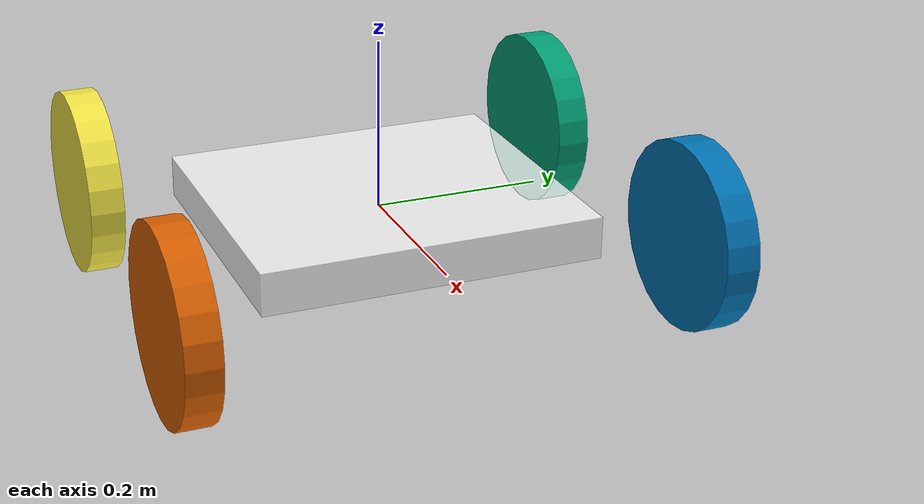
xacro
<?xml version="1.0"?>
<robot xmlns:xacro="http://www.ros.org/wiki/xacro" name="wheeled_robot">

  <link name="base_link">
    <visual>
      <origin xyz="0 0 0" rpy="0 0 0"/>
      <geometry>
        <box size="0.35 0.4 0.05"/>
      </geometry>
      <material name="acrylic">
        <color rgba="1 1 1 0.8"/>
      </material>
    </visual>
    <collision>
      <origin xyz="0 0 0" rpy="0 0 0"/>
      <geometry>
        <box size="0.35 0.4 0.05"/>
      </geometry>
    </collision>
    <inertial>
      <mass value="200.0"/>
      <inertia ixx="10.0" ixy="0.0" ixz="0.0" iyy="10.0" iyz="0.0" izz="10.0"/>
    </inertial>
  </link>

  <joint name="root_joint" type="fixed">
    <origin xyz="0.0 0.0 0.0" rpy="0 0 0" />
    <parent link="base_link"/>
    <child link="root" />
  </joint>

  <link name="root">
    <inertial>
      <mass value="1" />
      <origin xyz="0 0 0.00" />
      <inertia ixx="1.0" ixy="0.0" ixz="0.0"
        iyy="1.0" iyz="0.0"
        izz="1.0" />
    </inertial>
    <visual>
      <geometry>
        <box size="0. 0. 0." /> <!-- does not need to match collision -->
      </geometry>
    </visual>
  </link>

  <gazebo reference="root">
    <gravity>true</gravity>
    <sensor name="imu_sensor" type="imu">
      <always_on>true</always_on>
      <update_rate>300</update_rate>
      <visualize>true</visualize>
      <topic>imu</topic>
      <plugin filename="libgazebo_ros_imu_sensor.so" name="imu_plugin">
        <topicName>imu</topicName>
        <bodyName>root</bodyName>
        <updateRateHZ>300.0</updateRateHZ>
        <gaussianNoise>0.001</gaussianNoise>
        <xyzOffset>0 0 0</xyzOffset>
        <rpyOffset>0 0 0</rpyOffset>
        <frameName>root</frameName>
        <initialOrientationAsReference>false</initialOrientationAsReference>
      </plugin>
      <pose>0 0 0 0 0 0</pose>
    </sensor>
  </gazebo>

    <gazebo reference="root">
    <sensor type="multicamera" name="stereo_camera">
      <update_rate>15.0</update_rate>
      <camera name="left">
        <horizontal_fov>1.047</horizontal_fov>
            <image>
                <width>640</width>
                <height>480</height>
                <format>RGB_INT8</format>
            </image>
        <clip>
          <near>0.1</near>
          <far>100</far>
        </clip>
        <noise>
          <type>gaussian</type>
          <mean>0.0</mean>
          <stddev>0.001</stddev>
        </noise>
      </camera>
      <camera name="right">
        <pose>0 -0.1 0 0 0 0</pose>
        <horizontal_fov>1.047</horizontal_fov>
            <image>
                <width>640</width>
                <height>480</height>
                <format>RGB_INT8</format>
            </image>
        <noise>
          <type>gaussian</type>
          <mean>0.0</mean>
          <stddev>0.001</stddev>
        </noise>
      </camera>
      <plugin name="stereo_camera_controller" filename="libgazebo_ros_multicamera.so">
        <alwaysOn>true</alwaysOn>
        <updateRate>30.0</updateRate>
        <cameraName>camera</cameraName>
        <imageTopicName>image_raw</imageTopicName>
        <cameraInfoTopicName>camera_info</cameraInfoTopicName>
        <frameName>left_camera_optical_frame</frameName>
        <hackBaseline>0.1</hackBaseline>
        <distortionK1>0.0</distortionK1>
        <distortionK2>0.0</distortionK2>
        <distortionK3>0.0</distortionK3>
        <distortionT1>0.0</distortionT1>
        <distortionT2>0.0</distortionT2>
      </plugin>
    </sensor>
  </gazebo>

  <link name="wh_left_back">
    <visual>
      <origin xyz="0 0 0" rpy="1.57079632679 0 0"/>
      <geometry>
        <cylinder length="0.04" radius="0.11"/>
      </geometry>
    </visual>
    <collision>
      <origin xyz="0 0 0" rpy="1.57079632679 0 0"/>
      <geometry>
        <cylinder length="0.04" radius="0.14"/>
      </geometry>
    </collision>
    <inertial>
      <mass value="1.0"/>
      <inertia ixx="1.0" ixy="0.0" ixz="0.0" iyy="1.0" iyz="0.0" izz="1.0"/>
    </inertial>
  </link>

  <joint name="base_link_wh_left_back" type="continuous">
    <origin xyz="-.20 .3 0" rpy="0 0 0"/>
    <axis rpy="0 0 0" xyz="0 1 0"/>
    <parent link="base_link"/>
    <child link="wh_left_back"/>
  </joint>

  <transmission name="base_link_wh_left_back_wheel_trans">
    <type>transmission_interface/SimpleTransmission</type>
    <actuator name="base_link_wh_left_back_wheel_motor">
      <mechanicalReduction>1</mechanicalReduction>
    </actuator>
    <joint name="base_link_wh_left_back">
      <hardwareInterface>hardware_interface/VelocityJointInterface</hardwareInterface>
    </joint>
  </transmission>

  <link name="wh_right_back">
    <visual>
      <origin xyz="0 0 0" rpy="1.57079632679 0 0"/>
      <geometry>
        <cylinder length="0.04" radius="0.11"/>
      </geometry>
    </visual>
    <collision>
      <origin xyz="0 0 0" rpy="1.57079632679 0 0"/>
      <geometry>
        <cylinder length="0.04" radius="0.14"/>
      </geometry>
    </collision>
    <inertial>
      <mass value="1.0"/>
      <inertia ixx="1.0" ixy="0.0" ixz="0.0" iyy="1.0" iyz="0.0" izz="1.0"/>
    </inertial>
  </link>

  <joint name="base_link_wh_right_back" type="continuous">
    <origin xyz="-.2 -.3 0" rpy="0 0 0"/>
    <axis rpy="0 0 0" xyz="0 1 0"/>
    <parent link="base_link"/>
    <child link="wh_right_back"/>
  </joint>

  <transmission name="base_link_wh_right_back_wheel_trans">
    <type>transmission_interface/SimpleTransmission</type>
    <actuator name="base_link_wh_right_back_wheel_motor">
      <mechanicalReduction>1</mechanicalReduction>
    </actuator>
    <joint name="base_link_wh_right_back">
      <hardwareInterface>hardware_interface/VelocityJointInterface</hardwareInterface>
    </joint>
  </transmission>

  <link name="wh_left_front">
    <visual>
      <origin xyz="0 0 0" rpy="1.57079632679 0 0"/>
      <geometry>
        <cylinder length="0.04" radius="0.11"/>
      </geometry>
    </visual>
    <collision>
      <origin xyz="0 0 0" rpy="1.57079632679 0 0"/>
      <geometry>
        <cylinder length="0.04" radius="0.14"/>
      </geometry>
    </collision>
    <inertial>
      <mass value="1.0"/>
      <inertia ixx="1.0" ixy="0.0" ixz="0.0" iyy="1.0" iyz="0.0" izz="1.0"/>
    </inertial>
  </link>

  <joint name="base_link_wh_left_front" type="continuous">
    <origin xyz="0.2 0.3 0" rpy="0 0 0"/>
    <axis rpy="0 0 0" xyz="0 1 0"/>
    <parent link="base_link"/>
    <child link="wh_left_front"/>
  </joint>

  <transmission name="base_link_wh_left_front_wheel_trans">
    <type>transmission_interface/SimpleTransmission</type>
    <actuator name="base_link_wh_left_front_wheel_motor">
      <mechanicalReduction>1</mechanicalReduction>
    </actuator>
    <joint name="base_link_wh_left_front">
      <hardwareInterface>hardware_interface/VelocityJointInterface</hardwareInterface>
    </joint>
  </transmission>

  <link name="wh_right_front">
    <visual>
      <origin xyz="0 0 0" rpy="1.57079632679 0 0"/>
      <geometry>
        <cylinder length="0.04" radius="0.11"/>
      </geometry>
    </visual>
    <collision>
      <origin xyz="0 0 0" rpy="1.57079632679 0 0"/>
      <geometry>
        <cylinder length="0.04" radius="0.14"/>
      </geometry>
    </collision>
    <inertial>
      <mass value="1.0"/>
      <inertia ixx="1.0" ixy="0.0" ixz="0.0" iyy="1.0" iyz="0.0" izz="1.0"/>
    </inertial>
  </link>

  <joint name="base_link_wh_right_front" type="continuous">
    <origin xyz="0.2 -.3 0" rpy="0 0 0"/>
    <axis rpy="0 0 0" xyz="0 1 0"/>
    <parent link="base_link"/>
    <child link="wh_right_front"/>
  </joint>

  <transmission name="base_link_wh_right_front_wheel_trans">
    <type>transmission_interface/SimpleTransmission</type>
    <actuator name="base_link_wh_right_front_wheel_motor">
      <mechanicalReduction>1</mechanicalReduction>
    </actuator>
    <joint name="base_link_wh_right_front">
      <hardwareInterface>hardware_interface/VelocityJointInterface</hardwareInterface>
    </joint>
  </transmission>

  <!-- =================== Gazebo ==================== -->
  <gazebo>
    <plugin name="gazebo_ros_control" filename="libgazebo_ros_control.so">
      <robotNamespace>/</robotNamespace>
    </plugin>
  </gazebo>
</robot>
